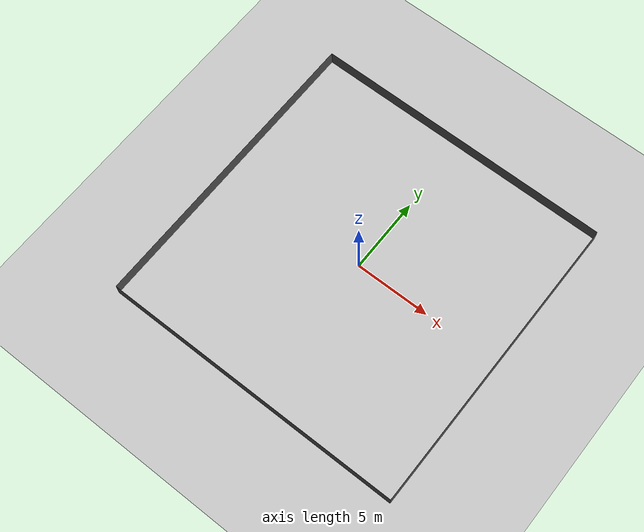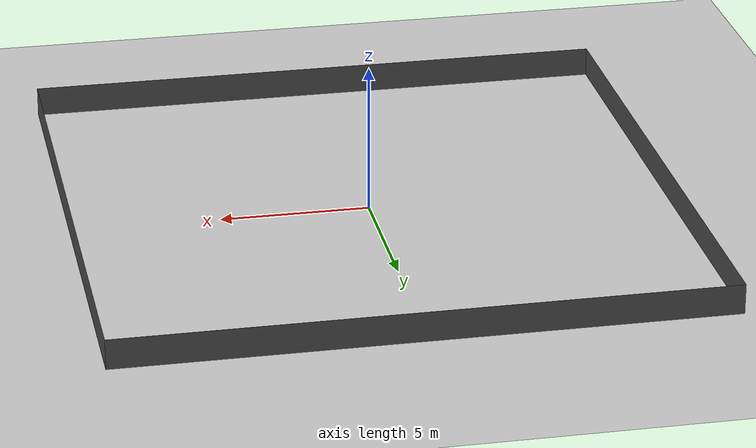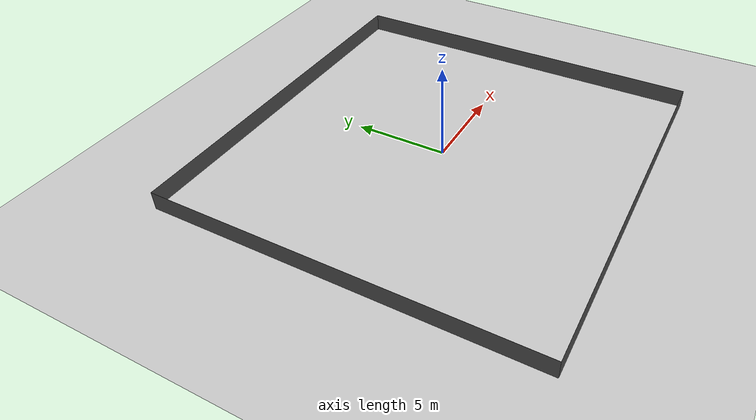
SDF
<sdf version="1.6">
  <world name="WalledWorld">

    <physics name="1ms" type="ignored">
      <max_step_size>0.001</max_step_size>
      <real_time_factor>1.0</real_time_factor>
    </physics>

    <plugin
      filename="gz-sim-physics-system"
      name="gz::sim::systems::Physics">
    </plugin>

    <plugin
      filename="gz-sim-user-commands-system"
      name="gz::sim::systems::UserCommands">
    </plugin>

    <plugin
      filename="gz-sim-scene-broadcaster-system"
      name="gz::sim::systems::SceneBroadcaster">
    </plugin>

    <light type="directional" name="sun">
      <cast_shadows>true</cast_shadows>
      <pose>0 0 10 0 0 0</pose>
      <diffuse>1 1 1 1</diffuse>
      <specular>0.5 0.5 0.5 1</specular>
      <attenuation>
        <range>1000</range>
        <constant>0.9</constant>
        <linear>0.01</linear>
        <quadratic>0.001</quadratic>
      </attenuation>
      <direction>-0.5 0.1 -0.9</direction>
    </light>

    <model name="ground_plane">
      <static>true</static>
      <link name="link">
        <collision name="collision">
          <geometry>
            <plane>
              <normal>0 0 1</normal>
              <size>100 100</size>
            </plane>
          </geometry>
          <surface>
            <friction>
              <ode>
                <mu>50</mu>
              </ode>
              <bullet>
                <friction>1</friction>
                <rolling_friction>0.1</rolling_friction>
              </bullet>
            </friction>
          </surface>
        </collision>
        <visual name="visual">
          <geometry>
            <plane>
              <normal>0 0 1</normal>
              <size>100 100</size>
            </plane>
          </geometry>
          <material>
            <ambient>0.8 0.8 0.8 1</ambient>
            <diffuse>0.8 0.8 0.8 1</diffuse>
            <specular>0.8 0.8 0.8 1</specular>
          </material>
        </visual>
      </link>
    </model>

    <!-- 围墙定义 -->
    <model name="Wall_North">
      <static>true</static>
      <pose>10 0 0.5 0 0 0</pose>
      <link name="link">
        <collision name="collision">
          <geometry>
            <plane>
              <normal>-1 0 0</normal>
              <size>1 20</size>
            </plane>
          </geometry>
          <surface>
            <friction>
              <ode>
                <mu>50</mu>
              </ode>
              <bullet>
                <friction>1</friction>
                <rolling_friction>0.1</rolling_friction>
              </bullet>
            </friction>
          </surface>
        </collision>
        <visual name="visual">
          <geometry>
            <plane>
              <normal>-1 0 0</normal>
              <size>1 20</size>
            </plane>
          </geometry>
          <material>
            <ambient>0.3 0.3 0.3 1</ambient>
            <diffuse>0.3 0.3 0.3 1</diffuse>
            <specular>0.3 0.3 0.3 1</specular>
          </material>
        </visual>
      </link>
    </model>

    <model name="Wall_Sourth">
      <static>true</static>
      <pose>-10 0 0.5 0 0 0</pose>
      <link name="link">
        <collision name="collision">
          <geometry>
            <plane>
              <normal>1 0 0</normal>
              <size>1 20</size>
            </plane>
          </geometry>
          <surface>
            <friction>
              <ode>
                <mu>50</mu>
              </ode>
              <bullet>
                <friction>1</friction>
                <rolling_friction>0.1</rolling_friction>
              </bullet>
            </friction>
          </surface>
        </collision>
        <visual name="visual">
          <geometry>
            <plane>
              <normal>1 0 0</normal>
              <size>1 20</size>
            </plane>
          </geometry>
          <material>
            <ambient>0.3 0.3 0.3 1</ambient>
            <diffuse>0.3 0.3 0.3 1</diffuse>
            <specular>0.3 0.3 0.3 1</specular>
          </material>
        </visual>
      </link>
    </model>

    <model name="Wall_East">
      <static>true</static>
      <pose>0 -10 0.5 0 0 0</pose>
      <link name="link">
        <collision name="collision">
          <geometry>
            <plane>
              <normal>0 1 0</normal>
              <size>20 1</size>
            </plane>
          </geometry>
          <surface>
            <friction>
              <ode>
                <mu>50</mu>
              </ode>
              <bullet>
                <friction>1</friction>
                <rolling_friction>0.1</rolling_friction>
              </bullet>
            </friction>
          </surface>
        </collision>
        <visual name="visual">
          <geometry>
            <plane>
              <normal>0 1 0</normal>
              <size>20 1</size>
            </plane>
          </geometry>
          <material>
            <ambient>0.3 0.3 0.3 1</ambient>
            <diffuse>0.3 0.3 0.3 1</diffuse>
            <specular>0.3 0.3 0.3 1</specular>
          </material>
        </visual>
      </link>
    </model>

    <model name="Wall_West">
      <static>true</static>
      <pose>0 10 0.5 0 0 0</pose>
      <link name="link">
        <collision name="collision">
          <geometry>
            <plane>
              <normal>0 -1 0</normal>
              <size>20 1</size>
            </plane>
          </geometry>
          <surface>
            <friction>
              <ode>
                <mu>50</mu>
              </ode>
              <bullet>
                <friction>1</friction>
                <rolling_friction>0.1</rolling_friction>
              </bullet>
            </friction>
          </surface>
        </collision>
        <visual name="visual">
          <geometry>
            <plane>
              <normal>0 -1 0</normal>
              <size>20 1</size>
            </plane>
          </geometry>
          <material>
            <ambient>0.3 0.3 0.3 1</ambient>
            <diffuse>0.3 0.3 0.3 1</diffuse>
            <specular>0.3 0.3 0.3 1</specular>
          </material>
        </visual>
      </link>
    </model>

    <!-- 类似地，定义东、南、西三面围墙，只需调整pose中的x、y值和旋转 -->

    <!-- 其他环境配置，如光照等 -->
  </world>
</sdf>
